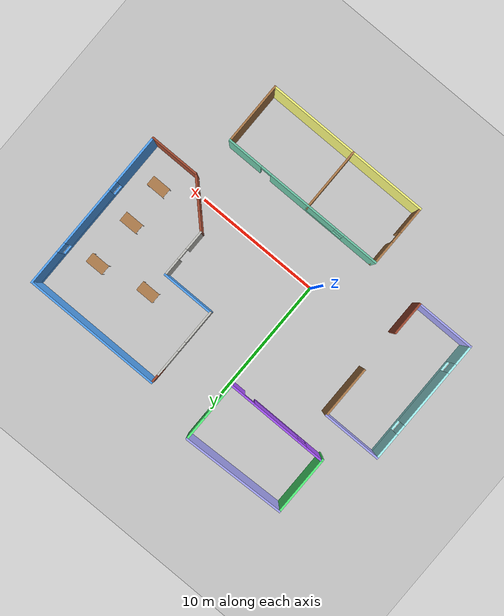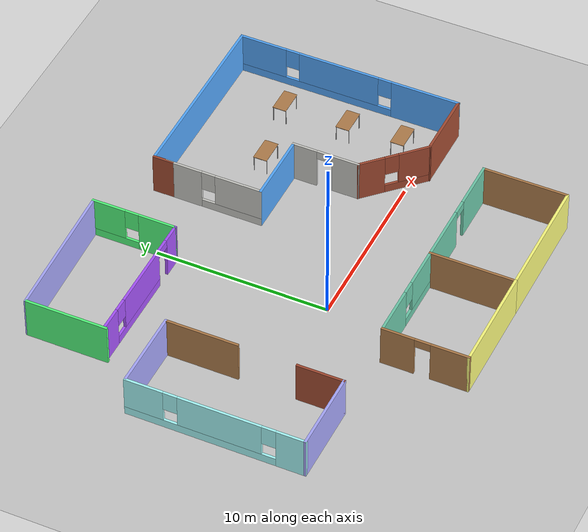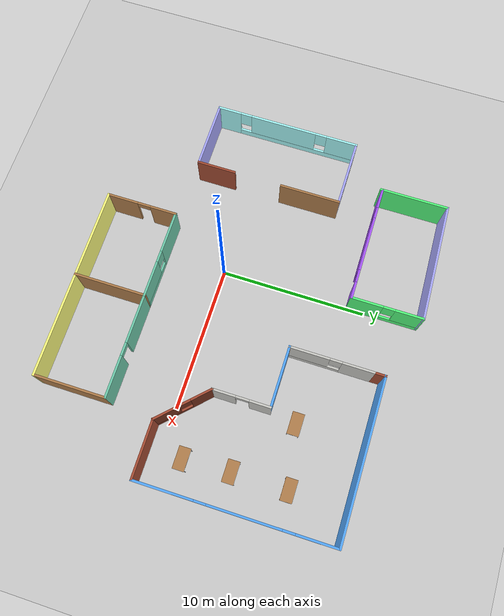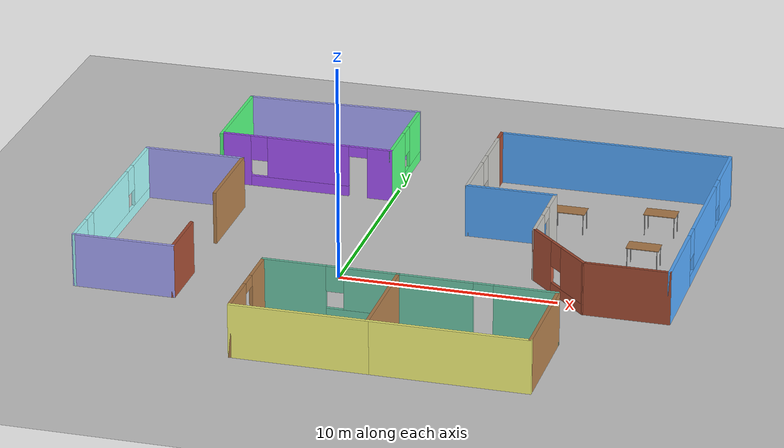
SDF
<sdf version="1.6">
 <world name="default">
  <model name="ground_plane">
   <static>1</static>
   <link name="link">
    <collision name="collision">
     <geometry><plane><normal>0 0 1</normal><size>100 100</size></plane></geometry>
     <surface>
      <contact><collide_bitmask>65535</collide_bitmask></contact>
      <friction><ode><mu>100</mu><mu2>50</mu2></ode></friction>
     </surface>
    </collision>
    <visual name="visual">
     <cast_shadows>0</cast_shadows>
     <geometry><plane><normal>0 0 1</normal><size>100 100</size></plane></geometry>
     <material>
      <script><uri>file://media/materials/scripts/gazebo.material</uri><name>Gazebo/Grey</name></script>
     </material>
    </visual>
   </link>
  </model>
  <model name="project_world">
   <pose>2.07578 2.357 0 0 -0 0</pose>
   <link name="Wall_1">
    <pose>-1.23578 -6.487 0 0 -0 0</pose>
    <visual name="Wall_1_Visual_0">
     <pose>-1.65552 0 1.25 0 -0 0</pose>
     <geometry><box><size>2.93896 0.15 2.5</size></box></geometry>
     <material>
      <script><uri>file://media/materials/scripts/gazebo.material</uri><name>Gazebo/Grey</name></script>
      <ambient>0.435294 0.796078 0.67451 1</ambient>
     </material>
     <meta><layer>0</layer></meta>
    </visual>
    <collision name="Wall_1_Collision_0">
     <geometry><box><size>2.93896 0.15 2.5</size></box></geometry>
     <pose>-1.65552 0 1.25 0 -0 0</pose>
    </collision>
    <visual name="Wall_1_Visual_1">
     <pose>1.46948 0 0.25 0 -0 0</pose>
     <geometry><box><size>3.31104 0.15 0.5</size></box></geometry>
     <material>
      <script><uri>file://media/materials/scripts/gazebo.material</uri><name>Gazebo/Grey</name></script>
      <ambient>0.435294 0.796078 0.67451 1</ambient>
     </material>
     <meta><layer>0</layer></meta>
    </visual>
    <collision name="Wall_1_Collision_1">
     <geometry><box><size>3.31104 0.15 0.5</size></box></geometry>
     <pose>1.46948 0 0.25 0 -0 0</pose>
    </collision>
    <visual name="Wall_1_Visual_2">
     <pose>1.86948 0 1.5 0 -0 0</pose>
     <geometry><box><size>2.51104 0.15 2</size></box></geometry>
     <material>
      <script><uri>file://media/materials/scripts/gazebo.material</uri><name>Gazebo/Grey</name></script>
      <ambient>0.435294 0.796078 0.67451 1</ambient>
     </material>
     <meta><layer>0</layer></meta>
    </visual>
    <collision name="Wall_1_Collision_2">
     <geometry><box><size>2.51104 0.15 2</size></box></geometry>
     <pose>1.86948 0 1.5 0 -0 0</pose>
    </collision>
    <visual name="Wall_1_Visual_3">
     <pose>0.213964 0 1.9 0 -0 0</pose>
     <geometry><box><size>0.8 0.15 1.2</size></box></geometry>
     <material>
      <script><uri>file://media/materials/scripts/gazebo.material</uri><name>Gazebo/Grey</name></script>
      <ambient>0.435294 0.796078 0.67451 1</ambient>
     </material>
     <meta><layer>0</layer></meta>
    </visual>
    <collision name="Wall_1_Collision_3">
     <geometry><box><size>0.8 0.15 1.2</size></box></geometry>
     <pose>0.213964 0 1.9 0 -0 0</pose>
    </collision>
   </link>
   <link name="Wall_11">
    <collision name="Wall_11_Collision">
     <geometry><box><size>2.75 0.15 2.5</size></box></geometry>
     <pose>0 0 1.25 0 -0 0</pose>
    </collision>
    <visual name="Wall_11_Visual">
     <pose>0 0 1.25 0 -0 0</pose>
     <geometry><box><size>2.75 0.15 2.5</size></box></geometry>
     <material>
      <script><uri>file://media/materials/scripts/gazebo.material</uri><name>Gazebo/Bricks</name></script>
      <ambient>1 1 1 1</ambient>
     </material>
     <meta><layer>0</layer></meta>
    </visual>
    <pose>-8.5094 -4.95184 0 0 -0 1.5708</pose>
   </link>
   <link name="Wall_13">
    <pose>-6.18981 6.48446 0 0 -0 0</pose>
    <visual name="Wall_13_Visual_0">
     <pose>-3.41981 0 1.25 0 -0 0</pose>
     <geometry><box><size>1.41037 0.15 2.5</size></box></geometry>
     <material>
      <script><uri>file://media/materials/scripts/gazebo.material</uri><name>Gazebo/Grey</name></script>
      <ambient>0.666667 0.333333 1 1</ambient>
     </material>
     <meta><layer>0</layer></meta>
    </visual>
    <collision name="Wall_13_Collision_0">
     <geometry><box><size>1.41037 0.15 2.5</size></box></geometry>
     <pose>-3.41981 0 1.25 0 -0 0</pose>
    </collision>
    <visual name="Wall_13_Visual_1">
     <pose>3.52234 0 1.25 0 -0 0</pose>
     <geometry><box><size>1.20531 0.15 2.5</size></box></geometry>
     <material>
      <script><uri>file://media/materials/scripts/gazebo.material</uri><name>Gazebo/Grey</name></script>
      <ambient>0.666667 0.333333 1 1</ambient>
     </material>
     <meta><layer>0</layer></meta>
    </visual>
    <collision name="Wall_13_Collision_1">
     <geometry><box><size>1.20531 0.15 2.5</size></box></geometry>
     <pose>3.52234 0 1.25 0 -0 0</pose>
    </collision>
    <visual name="Wall_13_Visual_2">
     <pose>-0.34747 0 0.25 0 -0 0</pose>
     <geometry><box><size>4.73431 0.15 0.5</size></box></geometry>
     <material>
      <script><uri>file://media/materials/scripts/gazebo.material</uri><name>Gazebo/Grey</name></script>
      <ambient>0.666667 0.333333 1 1</ambient>
     </material>
     <meta><layer>0</layer></meta>
    </visual>
    <collision name="Wall_13_Collision_2">
     <geometry><box><size>4.73431 0.15 0.5</size></box></geometry>
     <pose>-0.34747 0 0.25 0 -0 0</pose>
    </collision>
    <visual name="Wall_13_Visual_3">
     <pose>0.05253 0 1.5 0 -0 0</pose>
     <geometry><box><size>3.93431 0.15 2</size></box></geometry>
     <material>
      <script><uri>file://media/materials/scripts/gazebo.material</uri><name>Gazebo/Grey</name></script>
      <ambient>0.666667 0.333333 1 1</ambient>
     </material>
     <meta><layer>0</layer></meta>
    </visual>
    <collision name="Wall_13_Collision_3">
     <geometry><box><size>3.93431 0.15 2</size></box></geometry>
     <pose>0.05253 0 1.5 0 -0 0</pose>
    </collision>
    <visual name="Wall_13_Visual_4">
     <pose>-2.31463 0 1.9 0 -0 0</pose>
     <geometry><box><size>0.8 0.15 1.2</size></box></geometry>
     <material>
      <script><uri>file://media/materials/scripts/gazebo.material</uri><name>Gazebo/Grey</name></script>
      <ambient>0.666667 0.333333 1 1</ambient>
     </material>
     <meta><layer>0</layer></meta>
    </visual>
    <collision name="Wall_13_Collision_4">
     <geometry><box><size>0.8 0.15 1.2</size></box></geometry>
     <pose>-2.31463 0 1.9 0 -0 0</pose>
    </collision>
    <visual name="Wall_13_Visual_5">
     <pose>2.46969 0 2.25 0 -0 0</pose>
     <geometry><box><size>0.9 0.15 0.5</size></box></geometry>
     <material>
      <script><uri>file://media/materials/scripts/gazebo.material</uri><name>Gazebo/Grey</name></script>
      <ambient>0.666667 0.333333 1 1</ambient>
     </material>
     <meta><layer>0</layer></meta>
    </visual>
    <collision name="Wall_13_Collision_5">
     <geometry><box><size>0.9 0.15 0.5</size></box></geometry>
     <pose>2.46969 0 2.25 0 -0 0</pose>
    </collision>
   </link>
   <link name="Wall_14">
    <pose>-2.13981 8.90946 0 0 -0 1.5708</pose>
    <visual name="Wall_14_Visual_0">
     <pose>-1.38846 0 1.25 0 -0 0</pose>
     <geometry><box><size>2.22308 0.15 2.5</size></box></geometry>
     <material>
      <script><uri>file://media/materials/scripts/gazebo.material</uri><name>Gazebo/Grey</name></script>
      <ambient>0.333333 1 0.498039 1</ambient>
     </material>
     <meta><layer>0</layer></meta>
    </visual>
    <collision name="Wall_14_Collision_0">
     <geometry><box><size>2.22308 0.15 2.5</size></box></geometry>
     <pose>-1.38846 0 1.25 0 -0 0</pose>
    </collision>
    <visual name="Wall_14_Visual_1">
     <pose>1.11154 0 0.25 0 -0 0</pose>
     <geometry><box><size>2.77692 0.15 0.5</size></box></geometry>
     <material>
      <script><uri>file://media/materials/scripts/gazebo.material</uri><name>Gazebo/Grey</name></script>
      <ambient>0.333333 1 0.498039 1</ambient>
     </material>
     <meta><layer>0</layer></meta>
    </visual>
    <collision name="Wall_14_Collision_1">
     <geometry><box><size>2.77692 0.15 0.5</size></box></geometry>
     <pose>1.11154 0 0.25 0 -0 0</pose>
    </collision>
    <visual name="Wall_14_Visual_2">
     <pose>1.51154 0 1.5 0 -0 0</pose>
     <geometry><box><size>1.97692 0.15 2</size></box></geometry>
     <material>
      <script><uri>file://media/materials/scripts/gazebo.material</uri><name>Gazebo/Grey</name></script>
      <ambient>0.333333 1 0.498039 1</ambient>
     </material>
     <meta><layer>0</layer></meta>
    </visual>
    <collision name="Wall_14_Collision_2">
     <geometry><box><size>1.97692 0.15 2</size></box></geometry>
     <pose>1.51154 0 1.5 0 -0 0</pose>
    </collision>
    <visual name="Wall_14_Visual_3">
     <pose>0.123076 0 1.9 0 -0 0</pose>
     <geometry><box><size>0.8 0.15 1.2</size></box></geometry>
     <material>
      <script><uri>file://media/materials/scripts/gazebo.material</uri><name>Gazebo/Grey</name></script>
      <ambient>0.333333 1 0.498039 1</ambient>
     </material>
     <meta><layer>0</layer></meta>
    </visual>
    <collision name="Wall_14_Collision_3">
     <geometry><box><size>0.8 0.15 1.2</size></box></geometry>
     <pose>0.123076 0 1.9 0 -0 0</pose>
    </collision>
   </link>
   <link name="Wall_15">
    <collision name="Wall_15_Collision">
     <geometry><box><size>8.3252 0.15 2.5</size></box></geometry>
     <pose>0 0 1.25 0 -0 0</pose>
    </collision>
    <visual name="Wall_15_Visual">
     <pose>0 0 1.25 0 -0 0</pose>
     <geometry><box><size>8.3252 0.15 2.5</size></box></geometry>
     <material>
      <script><uri>file://media/materials/scripts/gazebo.material</uri><name>Gazebo/Grey</name></script>
      <ambient>0.666667 0.666667 1 1</ambient>
     </material>
     <meta><layer>0</layer></meta>
    </visual>
    <pose>-6.22499 11.1937 0 0 0 -3.10716</pose>
   </link>
   <link name="Wall_16">
    <collision name="Wall_16_Collision">
     <geometry><box><size>4.75 0.15 2.5</size></box></geometry>
     <pose>0 0 1.25 0 -0 0</pose>
    </collision>
    <visual name="Wall_16_Visual">
     <pose>0 0 1.25 0 -0 0</pose>
     <geometry><box><size>4.75 0.15 2.5</size></box></geometry>
     <material>
      <script><uri>file://media/materials/scripts/gazebo.material</uri><name>Gazebo/Grey</name></script>
      <ambient>0.333333 1 0.498039 1</ambient>
     </material>
     <meta><layer>0</layer></meta>
    </visual>
    <pose>-10.3102 8.68268 0 0 0 -1.5708</pose>
   </link>
   <link name="Wall_18">
    <pose>5.36422 -6.487 0 0 -0 0</pose>
    <visual name="Wall_18_Visual_0">
     <pose>-1.90549 0 1.25 0 -0 0</pose>
     <geometry><box><size>3.43901 0.15 2.5</size></box></geometry>
     <material>
      <script><uri>file://media/materials/scripts/gazebo.material</uri><name>Gazebo/Grey</name></script>
      <ambient>0.435294 0.796078 0.67451 1</ambient>
     </material>
     <meta><layer>0</layer></meta>
    </visual>
    <collision name="Wall_18_Collision_0">
     <geometry><box><size>3.43901 0.15 2.5</size></box></geometry>
     <pose>-1.90549 0 1.25 0 -0 0</pose>
    </collision>
    <visual name="Wall_18_Visual_1">
     <pose>2.16951 0 1.25 0 -0 0</pose>
     <geometry><box><size>2.91099 0.15 2.5</size></box></geometry>
     <material>
      <script><uri>file://media/materials/scripts/gazebo.material</uri><name>Gazebo/Grey</name></script>
      <ambient>0.435294 0.796078 0.67451 1</ambient>
     </material>
     <meta><layer>0</layer></meta>
    </visual>
    <collision name="Wall_18_Collision_1">
     <geometry><box><size>2.91099 0.15 2.5</size></box></geometry>
     <pose>2.16951 0 1.25 0 -0 0</pose>
    </collision>
    <visual name="Wall_18_Visual_2">
     <pose>0.264014 0 2.25 0 -0 0</pose>
     <geometry><box><size>0.9 0.15 0.5</size></box></geometry>
     <material>
      <script><uri>file://media/materials/scripts/gazebo.material</uri><name>Gazebo/Grey</name></script>
      <ambient>0.435294 0.796078 0.67451 1</ambient>
     </material>
     <meta><layer>0</layer></meta>
    </visual>
    <collision name="Wall_18_Collision_2">
     <geometry><box><size>0.9 0.15 0.5</size></box></geometry>
     <pose>0.264014 0 2.25 0 -0 0</pose>
    </collision>
   </link>
   <link name="Wall_19">
    <collision name="Wall_19_Collision">
     <geometry><box><size>5 0.15 2.5</size></box></geometry>
     <pose>0 0 1.25 0 -0 0</pose>
    </collision>
    <visual name="Wall_19_Visual">
     <pose>0 0 1.25 0 -0 0</pose>
     <geometry><box><size>5 0.15 2.5</size></box></geometry>
     <material>
      <script><uri>file://media/materials/scripts/gazebo.material</uri><name>Gazebo/Wood</name></script>
      <ambient>1 1 1 1</ambient>
     </material>
     <meta><layer>0</layer></meta>
    </visual>
    <pose>8.91422 -8.912 0 0 0 -1.5708</pose>
   </link>
   <link name="Wall_2">
    <collision name="Wall_2_Collision">
     <geometry><box><size>5 0.15 2.5</size></box></geometry>
     <pose>0 0 1.25 0 -0 0</pose>
    </collision>
    <visual name="Wall_2_Visual">
     <pose>0 0 1.25 0 -0 0</pose>
     <geometry><box><size>5 0.15 2.5</size></box></geometry>
     <material>
      <script><uri>file://media/materials/scripts/gazebo.material</uri><name>Gazebo/Wood</name></script>
      <ambient>1 1 1 1</ambient>
     </material>
     <meta><layer>0</layer></meta>
    </visual>
    <pose>1.81422 -8.912 0 0 0 -1.5708</pose>
   </link>
   <link name="Wall_20">
    <collision name="Wall_20_Collision">
     <geometry><box><size>7.25 0.15 2.5</size></box></geometry>
     <pose>0 0 1.25 0 -0 0</pose>
    </collision>
    <visual name="Wall_20_Visual">
     <pose>0 0 1.25 0 -0 0</pose>
     <geometry><box><size>7.25 0.15 2.5</size></box></geometry>
     <material>
      <script><uri>file://media/materials/scripts/gazebo.material</uri><name>Gazebo/Grey</name></script>
      <ambient>1 1 0.498039 1</ambient>
     </material>
     <meta><layer>0</layer></meta>
    </visual>
    <pose>5.36422 -11.337 0 0 -0 3.14159</pose>
   </link>
   <link name="Wall_22">
    <pose>2.26026 6.37326 0 0 0 -1.5708</pose>
    <visual name="Wall_22_Visual_0">
     <pose>-1.78632 0 1.25 0 -0 0</pose>
     <geometry><box><size>2.17736 0.15 2.5</size></box></geometry>
     <material>
      <script><uri>file://media/materials/scripts/gazebo.material</uri><name>Gazebo/CeilingTiled</name></script>
      <ambient>1 0.666667 1 1</ambient>
     </material>
     <meta><layer>0</layer></meta>
    </visual>
    <collision name="Wall_22_Collision_0">
     <geometry><box><size>2.17736 0.15 2.5</size></box></geometry>
     <pose>-1.78632 0 1.25 0 -0 0</pose>
    </collision>
    <visual name="Wall_22_Visual_1">
     <pose>1.08868 0 0.25 0 -0 0</pose>
     <geometry><box><size>3.57264 0.15 0.5</size></box></geometry>
     <material>
      <script><uri>file://media/materials/scripts/gazebo.material</uri><name>Gazebo/CeilingTiled</name></script>
      <ambient>1 0.666667 1 1</ambient>
     </material>
     <meta><layer>0</layer></meta>
    </visual>
    <collision name="Wall_22_Collision_1">
     <geometry><box><size>3.57264 0.15 0.5</size></box></geometry>
     <pose>1.08868 0 0.25 0 -0 0</pose>
    </collision>
    <visual name="Wall_22_Visual_2">
     <pose>1.48868 0 1.5 0 -0 0</pose>
     <geometry><box><size>2.77264 0.15 2</size></box></geometry>
     <material>
      <script><uri>file://media/materials/scripts/gazebo.material</uri><name>Gazebo/CeilingTiled</name></script>
      <ambient>1 0.666667 1 1</ambient>
     </material>
     <meta><layer>0</layer></meta>
    </visual>
    <collision name="Wall_22_Collision_2">
     <geometry><box><size>2.77264 0.15 2</size></box></geometry>
     <pose>1.48868 0 1.5 0 -0 0</pose>
    </collision>
    <visual name="Wall_22_Visual_3">
     <pose>-0.297644 0 1.9 0 -0 0</pose>
     <geometry><box><size>0.8 0.15 1.2</size></box></geometry>
     <material>
      <script><uri>file://media/materials/scripts/gazebo.material</uri><name>Gazebo/CeilingTiled</name></script>
      <ambient>1 0.666667 1 1</ambient>
     </material>
     <meta><layer>0</layer></meta>
    </visual>
    <collision name="Wall_22_Collision_3">
     <geometry><box><size>0.8 0.15 1.2</size></box></geometry>
     <pose>-0.297644 0 1.9 0 -0 0</pose>
    </collision>
   </link>
   <link name="Wall_23">
    <collision name="Wall_23_Collision">
     <geometry><box><size>4.25 0.15 2.5</size></box></geometry>
     <pose>0 0 1.25 0 -0 0</pose>
    </collision>
    <visual name="Wall_23_Visual">
     <pose>0 0 1.25 0 -0 0</pose>
     <geometry><box><size>4.25 0.15 2.5</size></box></geometry>
     <material>
      <script><uri>file://media/materials/scripts/gazebo.material</uri><name>Gazebo/Grey</name></script>
      <ambient>0.333333 0.666667 1 1</ambient>
     </material>
     <meta><layer>0</layer></meta>
    </visual>
    <pose>4.31026 3.57326 0 0 -0 0</pose>
   </link>
   <link name="Wall_24">
    <pose>6.36026 1.64826 0 0 0 -1.5708</pose>
    <visual name="Wall_24_Visual_0">
     <pose>-1.25855 0 1.25 0 -0 0</pose>
     <geometry><box><size>1.4829 0.15 2.5</size></box></geometry>
     <material>
      <script><uri>file://media/materials/scripts/gazebo.material</uri><name>Gazebo/CeilingTiled</name></script>
      <ambient>0.760784 0.662745 0.627451 1</ambient>
     </material>
     <meta><layer>0</layer></meta>
    </visual>
    <collision name="Wall_24_Collision_0">
     <geometry><box><size>1.4829 0.15 2.5</size></box></geometry>
     <pose>-1.25855 0 1.25 0 -0 0</pose>
    </collision>
    <visual name="Wall_24_Visual_1">
     <pose>1.19145 0 1.25 0 -0 0</pose>
     <geometry><box><size>1.6171 0.15 2.5</size></box></geometry>
     <material>
      <script><uri>file://media/materials/scripts/gazebo.material</uri><name>Gazebo/CeilingTiled</name></script>
      <ambient>0.760784 0.662745 0.627451 1</ambient>
     </material>
     <meta><layer>0</layer></meta>
    </visual>
    <collision name="Wall_24_Collision_1">
     <geometry><box><size>1.6171 0.15 2.5</size></box></geometry>
     <pose>1.19145 0 1.25 0 -0 0</pose>
    </collision>
    <visual name="Wall_24_Visual_2">
     <pose>-0.067102 0 2.25 0 -0 0</pose>
     <geometry><box><size>0.9 0.15 0.5</size></box></geometry>
     <material>
      <script><uri>file://media/materials/scripts/gazebo.material</uri><name>Gazebo/CeilingTiled</name></script>
      <ambient>0.760784 0.662745 0.627451 1</ambient>
     </material>
     <meta><layer>0</layer></meta>
    </visual>
    <collision name="Wall_24_Collision_2">
     <geometry><box><size>0.9 0.15 0.5</size></box></geometry>
     <pose>-0.067102 0 2.25 0 -0 0</pose>
    </collision>
   </link>
   <link name="Wall_25">
    <pose>7.80983 -1.72631 0 0 0 -0.785398</pose>
    <visual name="Wall_25_Visual_0">
     <pose>-1.33199 0 1.25 0 -0 0</pose>
     <geometry><box><size>1.58602 0.15 2.5</size></box></geometry>
     <material>
      <script><uri>file://media/materials/scripts/gazebo.material</uri><name>Gazebo/Bricks</name></script>
      <ambient>1 1 1 1</ambient>
     </material>
     <meta><layer>0</layer></meta>
    </visual>
    <collision name="Wall_25_Collision_0">
     <geometry><box><size>1.58602 0.15 2.5</size></box></geometry>
     <pose>-1.33199 0 1.25 0 -0 0</pose>
    </collision>
    <visual name="Wall_25_Visual_1">
     <pose>0.793009 0 0.25 0 -0 0</pose>
     <geometry><box><size>2.66398 0.15 0.5</size></box></geometry>
     <material>
      <script><uri>file://media/materials/scripts/gazebo.material</uri><name>Gazebo/Bricks</name></script>
      <ambient>1 1 1 1</ambient>
     </material>
     <meta><layer>0</layer></meta>
    </visual>
    <collision name="Wall_25_Collision_1">
     <geometry><box><size>2.66398 0.15 0.5</size></box></geometry>
     <pose>0.793009 0 0.25 0 -0 0</pose>
    </collision>
    <visual name="Wall_25_Visual_2">
     <pose>1.19301 0 1.5 0 -0 0</pose>
     <geometry><box><size>1.86398 0.15 2</size></box></geometry>
     <material>
      <script><uri>file://media/materials/scripts/gazebo.material</uri><name>Gazebo/Bricks</name></script>
      <ambient>1 1 1 1</ambient>
     </material>
     <meta><layer>0</layer></meta>
    </visual>
    <collision name="Wall_25_Collision_2">
     <geometry><box><size>1.86398 0.15 2</size></box></geometry>
     <pose>1.19301 0 1.5 0 -0 0</pose>
    </collision>
    <visual name="Wall_25_Visual_3">
     <pose>-0.138981 0 1.9 0 -0 0</pose>
     <geometry><box><size>0.8 0.15 1.2</size></box></geometry>
     <material>
      <script><uri>file://media/materials/scripts/gazebo.material</uri><name>Gazebo/Bricks</name></script>
      <ambient>1 1 1 1</ambient>
     </material>
     <meta><layer>0</layer></meta>
    </visual>
    <collision name="Wall_25_Collision_3">
     <geometry><box><size>0.8 0.15 1.2</size></box></geometry>
     <pose>-0.138981 0 1.9 0 -0 0</pose>
    </collision>
   </link>
   <link name="Wall_26">
    <collision name="Wall_26_Collision">
     <geometry><box><size>4 0.15 2.5</size></box></geometry>
     <pose>0 0 1.25 0 -0 0</pose>
    </collision>
    <visual name="Wall_26_Visual">
     <pose>0 0 1.25 0 -0 0</pose>
     <geometry><box><size>4 0.15 2.5</size></box></geometry>
     <material>
      <script><uri>file://media/materials/scripts/gazebo.material</uri><name>Gazebo/Bricks</name></script>
      <ambient>1 1 1 1</ambient>
     </material>
     <meta><layer>0</layer></meta>
    </visual>
    <pose>11.1844 -3.17588 0 0 -0 0</pose>
   </link>
   <link name="Wall_27">
    <pose>13.1094 3.37412 0 0 -0 1.5708</pose>
    <visual name="Wall_27_Visual_0">
     <pose>-4.60393 0 1.25 0 -0 0</pose>
     <geometry><box><size>4.04214 0.15 2.5</size></box></geometry>
     <material>
      <script><uri>file://media/materials/scripts/gazebo.material</uri><name>Gazebo/Grey</name></script>
      <ambient>0.333333 0.666667 1 1</ambient>
     </material>
     <meta><layer>0</layer></meta>
    </visual>
    <collision name="Wall_27_Collision_0">
     <geometry><box><size>4.04214 0.15 2.5</size></box></geometry>
     <pose>-4.60393 0 1.25 0 -0 0</pose>
    </collision>
    <visual name="Wall_27_Visual_1">
     <pose>2.02107 0 0.25 0 -0 0</pose>
     <geometry><box><size>9.20786 0.15 0.5</size></box></geometry>
     <material>
      <script><uri>file://media/materials/scripts/gazebo.material</uri><name>Gazebo/Grey</name></script>
      <ambient>0.333333 0.666667 1 1</ambient>
     </material>
     <meta><layer>0</layer></meta>
    </visual>
    <collision name="Wall_27_Collision_1">
     <geometry><box><size>9.20786 0.15 0.5</size></box></geometry>
     <pose>2.02107 0 0.25 0 -0 0</pose>
    </collision>
    <visual name="Wall_27_Visual_2">
     <pose>0.610161 0 1.5 0 -0 0</pose>
     <geometry><box><size>4.78604 0.15 2</size></box></geometry>
     <material>
      <script><uri>file://media/materials/scripts/gazebo.material</uri><name>Gazebo/Grey</name></script>
      <ambient>0.333333 0.666667 1 1</ambient>
     </material>
     <meta><layer>0</layer></meta>
    </visual>
    <collision name="Wall_27_Collision_2">
     <geometry><box><size>4.78604 0.15 2</size></box></geometry>
     <pose>0.610161 0 1.5 0 -0 0</pose>
    </collision>
    <visual name="Wall_27_Visual_3">
     <pose>5.21409 0 1.5 0 -0 0</pose>
     <geometry><box><size>2.82182 0.15 2</size></box></geometry>
     <material>
      <script><uri>file://media/materials/scripts/gazebo.material</uri><name>Gazebo/Grey</name></script>
      <ambient>0.333333 0.666667 1 1</ambient>
     </material>
     <meta><layer>0</layer></meta>
    </visual>
    <collision name="Wall_27_Collision_3">
     <geometry><box><size>2.82182 0.15 2</size></box></geometry>
     <pose>5.21409 0 1.5 0 -0 0</pose>
    </collision>
    <visual name="Wall_27_Visual_4">
     <pose>-2.18286 0 1.9 0 -0 0</pose>
     <geometry><box><size>0.8 0.15 1.2</size></box></geometry>
     <material>
      <script><uri>file://media/materials/scripts/gazebo.material</uri><name>Gazebo/Grey</name></script>
      <ambient>0.333333 0.666667 1 1</ambient>
     </material>
     <meta><layer>0</layer></meta>
    </visual>
    <collision name="Wall_27_Collision_4">
     <geometry><box><size>0.8 0.15 1.2</size></box></geometry>
     <pose>-2.18286 0 1.9 0 -0 0</pose>
    </collision>
    <visual name="Wall_27_Visual_5">
     <pose>3.40318 0 1.9 0 -0 0</pose>
     <geometry><box><size>0.8 0.15 1.2</size></box></geometry>
     <material>
      <script><uri>file://media/materials/scripts/gazebo.material</uri><name>Gazebo/Grey</name></script>
      <ambient>0.333333 0.666667 1 1</ambient>
     </material>
     <meta><layer>0</layer></meta>
    </visual>
    <collision name="Wall_27_Collision_5">
     <geometry><box><size>0.8 0.15 1.2</size></box></geometry>
     <pose>3.40318 0 1.9 0 -0 0</pose>
    </collision>
   </link>
   <link name="Wall_28">
    <collision name="Wall_28_Collision">
     <geometry><box><size>11 0.15 2.5</size></box></geometry>
     <pose>0 0 1.25 0 -0 0</pose>
    </collision>
    <visual name="Wall_28_Visual">
     <pose>0 0 1.25 0 -0 0</pose>
     <geometry><box><size>11 0.15 2.5</size></box></geometry>
     <material>
      <script><uri>file://media/materials/scripts/gazebo.material</uri><name>Gazebo/Grey</name></script>
      <ambient>0.333333 0.666667 1 1</ambient>
     </material>
     <meta><layer>0</layer></meta>
    </visual>
    <pose>7.6844 9.92412 0 0 -0 3.14159</pose>
   </link>
   <link name="Wall_29">
    <collision name="Wall_29_Collision">
     <geometry><box><size>1.25 0.15 2.5</size></box></geometry>
     <pose>0 0 1.25 0 -0 0</pose>
    </collision>
    <visual name="Wall_29_Visual">
     <pose>0 0 1.25 0 -0 0</pose>
     <geometry><box><size>1.25 0.15 2.5</size></box></geometry>
     <material>
      <script><uri>file://media/materials/scripts/gazebo.material</uri><name>Gazebo/Bricks</name></script>
      <ambient>1 1 1 1</ambient>
     </material>
     <meta><layer>0</layer></meta>
    </visual>
    <pose>2.2594 9.37412 0 0 0 -1.5708</pose>
   </link>
   <link name="Wall_3">
    <collision name="Wall_3_Collision">
     <geometry><box><size>6.25 0.15 2.5</size></box></geometry>
     <pose>0 0 1.25 0 -0 0</pose>
    </collision>
    <visual name="Wall_3_Visual">
     <pose>0 0 1.25 0 -0 0</pose>
     <geometry><box><size>6.25 0.15 2.5</size></box></geometry>
     <material>
      <script><uri>file://media/materials/scripts/gazebo.material</uri><name>Gazebo/Grey</name></script>
      <ambient>1 1 0.498039 1</ambient>
     </material>
     <meta><layer>0</layer></meta>
    </visual>
    <pose>-1.23578 -11.337 0 0 -0 3.14159</pose>
   </link>
   <link name="Wall_4">
    <pose>-4.28578 -8.912 0 0 -0 1.5708</pose>
    <visual name="Wall_4_Visual_0">
     <pose>-1.39761 0 1.25 0 -0 0</pose>
     <geometry><box><size>2.20478 0.15 2.5</size></box></geometry>
     <material>
      <script><uri>file://media/materials/scripts/gazebo.material</uri><name>Gazebo/Wood</name></script>
      <ambient>1 1 1 1</ambient>
     </material>
     <meta><layer>0</layer></meta>
    </visual>
    <collision name="Wall_4_Collision_0">
     <geometry><box><size>2.20478 0.15 2.5</size></box></geometry>
     <pose>-1.39761 0 1.25 0 -0 0</pose>
    </collision>
    <visual name="Wall_4_Visual_1">
     <pose>1.55239 0 1.25 0 -0 0</pose>
     <geometry><box><size>1.89522 0.15 2.5</size></box></geometry>
     <material>
      <script><uri>file://media/materials/scripts/gazebo.material</uri><name>Gazebo/Wood</name></script>
      <ambient>1 1 1 1</ambient>
     </material>
     <meta><layer>0</layer></meta>
    </visual>
    <collision name="Wall_4_Collision_1">
     <geometry><box><size>1.89522 0.15 2.5</size></box></geometry>
     <pose>1.55239 0 1.25 0 -0 0</pose>
    </collision>
    <visual name="Wall_4_Visual_2">
     <pose>0.154783 0 2.25 0 -0 0</pose>
     <geometry><box><size>0.9 0.15 0.5</size></box></geometry>
     <material>
      <script><uri>file://media/materials/scripts/gazebo.material</uri><name>Gazebo/Wood</name></script>
      <ambient>1 1 1 1</ambient>
     </material>
     <meta><layer>0</layer></meta>
    </visual>
    <collision name="Wall_4_Collision_2">
     <geometry><box><size>0.9 0.15 0.5</size></box></geometry>
     <pose>0.154783 0 2.25 0 -0 0</pose>
    </collision>
   </link>
   <link name="Wall_6">
    <collision name="Wall_6_Collision">
     <geometry><box><size>4.75 0.15 2.5</size></box></geometry>
     <pose>0 0 1.25 0 -0 0</pose>
    </collision>
    <visual name="Wall_6_Visual">
     <pose>0 0 1.25 0 -0 0</pose>
     <geometry><box><size>4.75 0.15 2.5</size></box></geometry>
     <material>
      <script><uri>file://media/materials/scripts/gazebo.material</uri><name>Gazebo/Grey</name></script>
      <ambient>0.666667 0.666667 1 1</ambient>
     </material>
     <meta><layer>0</layer></meta>
    </visual>
    <pose>-10.8094 -6.25184 0 0 -0 3.14159</pose>
   </link>
   <link name="Wall_7">
    <pose>-13.1094 -1.20184 0 0 -0 1.5708</pose>
    <visual name="Wall_7_Visual_0">
     <pose>-4.27917 0 1.25 0 -0 0</pose>
     <geometry><box><size>1.69166 0.15 2.5</size></box></geometry>
     <material>
      <script><uri>file://media/materials/scripts/gazebo.material</uri><name>Gazebo/Grey</name></script>
      <ambient>0.666667 1 1 1</ambient>
     </material>
     <meta><layer>0</layer></meta>
    </visual>
    <collision name="Wall_7_Collision_0">
     <geometry><box><size>1.69166 0.15 2.5</size></box></geometry>
     <pose>-4.27917 0 1.25 0 -0 0</pose>
    </collision>
    <visual name="Wall_7_Visual_1">
     <pose>0.84583 0 0.25 0 -0 0</pose>
     <geometry><box><size>8.55834 0.15 0.5</size></box></geometry>
     <material>
      <script><uri>file://media/materials/scripts/gazebo.material</uri><name>Gazebo/Grey</name></script>
      <ambient>0.666667 1 1 1</ambient>
     </material>
     <meta><layer>0</layer></meta>
    </visual>
    <collision name="Wall_7_Collision_1">
     <geometry><box><size>8.55834 0.15 0.5</size></box></geometry>
     <pose>0.84583 0 0.25 0 -0 0</pose>
    </collision>
    <visual name="Wall_7_Visual_2">
     <pose>-0.266919 0 1.5 0 -0 0</pose>
     <geometry><box><size>4.73284 0.15 2</size></box></geometry>
     <material>
      <script><uri>file://media/materials/scripts/gazebo.material</uri><name>Gazebo/Grey</name></script>
      <ambient>0.666667 1 1 1</ambient>
     </material>
     <meta><layer>0</layer></meta>
    </visual>
    <collision name="Wall_7_Collision_2">
     <geometry><box><size>4.73284 0.15 2</size></box></geometry>
     <pose>-0.266919 0 1.5 0 -0 0</pose>
    </collision>
    <visual name="Wall_7_Visual_3">
     <pose>4.01225 0 1.5 0 -0 0</pose>
     <geometry><box><size>2.2255 0.15 2</size></box></geometry>
     <material>
      <script><uri>file://media/materials/scripts/gazebo.material</uri><name>Gazebo/Grey</name></script>
      <ambient>0.666667 1 1 1</ambient>
     </material>
     <meta><layer>0</layer></meta>
    </visual>
    <collision name="Wall_7_Collision_3">
     <geometry><box><size>2.2255 0.15 2</size></box></geometry>
     <pose>4.01225 0 1.5 0 -0 0</pose>
    </collision>
    <visual name="Wall_7_Visual_4">
     <pose>-3.03334 0 1.9 0 -0 0</pose>
     <geometry><box><size>0.8 0.15 1.2</size></box></geometry>
     <material>
      <script><uri>file://media/materials/scripts/gazebo.material</uri><name>Gazebo/Grey</name></script>
      <ambient>0.666667 1 1 1</ambient>
     </material>
     <meta><layer>0</layer></meta>
    </visual>
    <collision name="Wall_7_Collision_4">
     <geometry><box><size>0.8 0.15 1.2</size></box></geometry>
     <pose>-3.03334 0 1.9 0 -0 0</pose>
    </collision>
    <visual name="Wall_7_Visual_5">
     <pose>2.4995 0 1.9 0 -0 0</pose>
     <geometry><box><size>0.8 0.15 1.2</size></box></geometry>
     <material>
      <script><uri>file://media/materials/scripts/gazebo.material</uri><name>Gazebo/Grey</name></script>
      <ambient>0.666667 1 1 1</ambient>
     </material>
     <meta><layer>0</layer></meta>
    </visual>
    <collision name="Wall_7_Collision_5">
     <geometry><box><size>0.8 0.15 1.2</size></box></geometry>
     <pose>2.4995 0 1.9 0 -0 0</pose>
    </collision>
   </link>
   <link name="Wall_8">
    <collision name="Wall_8_Collision">
     <geometry><box><size>4.75 0.15 2.5</size></box></geometry>
     <pose>0 0 1.25 0 -0 0</pose>
    </collision>
    <visual name="Wall_8_Visual">
     <pose>0 0 1.25 0 -0 0</pose>
     <geometry><box><size>4.75 0.15 2.5</size></box></geometry>
     <material>
      <script><uri>file://media/materials/scripts/gazebo.material</uri><name>Gazebo/Grey</name></script>
      <ambient>0.666667 0.666667 1 1</ambient>
     </material>
     <meta><layer>0</layer></meta>
    </visual>
    <pose>-10.8094 3.84816 0 0 -0 0</pose>
   </link>
   <link name="Wall_9">
    <collision name="Wall_9_Collision">
     <geometry><box><size>4.25 0.15 2.5</size></box></geometry>
     <pose>0 0 1.25 0 -0 0</pose>
    </collision>
    <visual name="Wall_9_Visual">
     <pose>0 0 1.25 0 -0 0</pose>
     <geometry><box><size>4.25 0.15 2.5</size></box></geometry>
     <material>
      <script><uri>file://media/materials/scripts/gazebo.material</uri><name>Gazebo/Wood</name></script>
      <ambient>1 1 1 1</ambient>
     </material>
     <meta><layer>0</layer></meta>
    </visual>
    <pose>-8.5094 1.79816 0 0 0 -1.5708</pose>
   </link>
   <static>1</static>
  </model>
  <model name="table">
   <static>1</static>
   <link name="link">
    <collision name="surface">
     <pose>0 0 1 0 -0 0</pose>
     <geometry><box><size>1.5 0.8 0.03</size></box></geometry>
     <surface><friction><ode><mu>0.6</mu><mu2>0.6</mu2></ode></friction></surface>
    </collision>
    <visual name="visual1">
     <pose>0 0 1 0 -0 0</pose>
     <geometry><box><size>1.5 0.8 0.03</size></box></geometry>
     <material>
      <script><uri>file://media/materials/scripts/gazebo.material</uri><name>Gazebo/Wood</name></script>
     </material>
    </visual>
    <collision name="front_left_leg">
     <pose>0.68 0.38 0.5 0 -0 0</pose>
     <geometry><cylinder><radius>0.02</radius><length>1</length></cylinder></geometry>
    </collision>
    <visual name="front_left_leg">
     <pose>0.68 0.38 0.5 0 -0 0</pose>
     <geometry><cylinder><radius>0.02</radius><length>1</length></cylinder></geometry>
     <material>
      <script><uri>file://media/materials/scripts/gazebo.material</uri><name>Gazebo/Grey</name></script>
     </material>
    </visual>
    <collision name="front_right_leg">
     <pose>0.68 -0.38 0.5 0 -0 0</pose>
     <geometry><cylinder><radius>0.02</radius><length>1</length></cylinder></geometry>
    </collision>
    <visual name="front_right_leg">
     <pose>0.68 -0.38 0.5 0 -0 0</pose>
     <geometry><cylinder><radius>0.02</radius><length>1</length></cylinder></geometry>
     <material>
      <script><uri>file://media/materials/scripts/gazebo.material</uri><name>Gazebo/Grey</name></script>
     </material>
    </visual>
    <collision name="back_right_leg">
     <pose>-0.68 -0.38 0.5 0 -0 0</pose>
     <geometry><cylinder><radius>0.02</radius><length>1</length></cylinder></geometry>
    </collision>
    <visual name="back_right_leg">
     <pose>-0.68 -0.38 0.5 0 -0 0</pose>
     <geometry><cylinder><radius>0.02</radius><length>1</length></cylinder></geometry>
     <material>
      <script><uri>file://media/materials/scripts/gazebo.material</uri><name>Gazebo/Grey</name></script>
     </material>
    </visual>
    <collision name="back_left_leg">
     <pose>-0.68 0.38 0.5 0 -0 0</pose>
     <geometry><cylinder><radius>0.02</radius><length>1</length></cylinder></geometry>
    </collision>
    <visual name="back_left_leg">
     <pose>-0.68 0.38 0.5 0 -0 0</pose>
     <geometry><cylinder><radius>0.02</radius><length>1</length></cylinder></geometry>
     <material>
      <script><uri>file://media/materials/scripts/gazebo.material</uri><name>Gazebo/Grey</name></script>
     </material>
    </visual>
   </link>
   <pose>12.8261 4.71149 0 0 -0 0</pose>
  </model>
  <model name="table_1">
   <static>1</static>
   <link name="link">
    <collision name="surface">
     <pose>0 0 1 0 -0 0</pose>
     <geometry><box><size>1.5 0.8 0.03</size></box></geometry>
     <surface><friction><ode><mu>0.6</mu><mu2>0.6</mu2></ode></friction></surface>
    </collision>
    <visual name="visual1">
     <pose>0 0 1 0 -0 0</pose>
     <geometry><box><size>1.5 0.8 0.03</size></box></geometry>
     <material>
      <script><uri>file://media/materials/scripts/gazebo.material</uri><name>Gazebo/Wood</name></script>
     </material>
    </visual>
    <collision name="front_left_leg">
     <pose>0.68 0.38 0.5 0 -0 0</pose>
     <geometry><cylinder><radius>0.02</radius><length>1</length></cylinder></geometry>
    </collision>
    <visual name="front_left_leg">
     <pose>0.68 0.38 0.5 0 -0 0</pose>
     <geometry><cylinder><radius>0.02</radius><length>1</length></cylinder></geometry>
     <material>
      <script><uri>file://media/materials/scripts/gazebo.material</uri><name>Gazebo/Grey</name></script>
     </material>
    </visual>
    <collision name="front_right_leg">
     <pose>0.68 -0.38 0.5 0 -0 0</pose>
     <geometry><cylinder><radius>0.02</radius><length>1</length></cylinder></geometry>
    </collision>
    <visual name="front_right_leg">
     <pose>0.68 -0.38 0.5 0 -0 0</pose>
     <geometry><cylinder><radius>0.02</radius><length>1</length></cylinder></geometry>
     <material>
      <script><uri>file://media/materials/scripts/gazebo.material</uri><name>Gazebo/Grey</name></script>
     </material>
    </visual>
    <collision name="back_right_leg">
     <pose>-0.68 -0.38 0.5 0 -0 0</pose>
     <geometry><cylinder><radius>0.02</radius><length>1</length></cylinder></geometry>
    </collision>
    <visual name="back_right_leg">
     <pose>-0.68 -0.38 0.5 0 -0 0</pose>
     <geometry><cylinder><radius>0.02</radius><length>1</length></cylinder></geometry>
     <material>
      <script><uri>file://media/materials/scripts/gazebo.material</uri><name>Gazebo/Grey</name></script>
     </material>
    </visual>
    <collision name="back_left_leg">
     <pose>-0.68 0.38 0.5 0 -0 0</pose>
     <geometry><cylinder><radius>0.02</radius><length>1</length></cylinder></geometry>
    </collision>
    <visual name="back_left_leg">
     <pose>-0.68 0.38 0.5 0 -0 0</pose>
     <geometry><cylinder><radius>0.02</radius><length>1</length></cylinder></geometry>
     <material>
      <script><uri>file://media/materials/scripts/gazebo.material</uri><name>Gazebo/Grey</name></script>
     </material>
    </visual>
   </link>
   <pose>12.9896 1.50462 0 0 -0 0</pose>
  </model>
  <model name="table_2">
   <static>1</static>
   <link name="link">
    <collision name="surface">
     <pose>0 0 1 0 -0 0</pose>
     <geometry><box><size>1.5 0.8 0.03</size></box></geometry>
     <surface><friction><ode><mu>0.6</mu><mu2>0.6</mu2></ode></friction></surface>
    </collision>
    <visual name="visual1">
     <pose>0 0 1 0 -0 0</pose>
     <geometry><box><size>1.5 0.8 0.03</size></box></geometry>
     <material>
      <script><uri>file://media/materials/scripts/gazebo.material</uri><name>Gazebo/Wood</name></script>
     </material>
    </visual>
    <collision name="front_left_leg">
     <pose>0.68 0.38 0.5 0 -0 0</pose>
     <geometry><cylinder><radius>0.02</radius><length>1</length></cylinder></geometry>
    </collision>
    <visual name="front_left_leg">
     <pose>0.68 0.38 0.5 0 -0 0</pose>
     <geometry><cylinder><radius>0.02</radius><length>1</length></cylinder></geometry>
     <material>
      <script><uri>file://media/materials/scripts/gazebo.material</uri><name>Gazebo/Grey</name></script>
     </material>
    </visual>
    <collision name="front_right_leg">
     <pose>0.68 -0.38 0.5 0 -0 0</pose>
     <geometry><cylinder><radius>0.02</radius><length>1</length></cylinder></geometry>
    </collision>
    <visual name="front_right_leg">
     <pose>0.68 -0.38 0.5 0 -0 0</pose>
     <geometry><cylinder><radius>0.02</radius><length>1</length></cylinder></geometry>
     <material>
      <script><uri>file://media/materials/scripts/gazebo.material</uri><name>Gazebo/Grey</name></script>
     </material>
    </visual>
    <collision name="back_right_leg">
     <pose>-0.68 -0.38 0.5 0 -0 0</pose>
     <geometry><cylinder><radius>0.02</radius><length>1</length></cylinder></geometry>
    </collision>
    <visual name="back_right_leg">
     <pose>-0.68 -0.38 0.5 0 -0 0</pose>
     <geometry><cylinder><radius>0.02</radius><length>1</length></cylinder></geometry>
     <material>
      <script><uri>file://media/materials/scripts/gazebo.material</uri><name>Gazebo/Grey</name></script>
     </material>
    </visual>
    <collision name="back_left_leg">
     <pose>-0.68 0.38 0.5 0 -0 0</pose>
     <geometry><cylinder><radius>0.02</radius><length>1</length></cylinder></geometry>
    </collision>
    <visual name="back_left_leg">
     <pose>-0.68 0.38 0.5 0 -0 0</pose>
     <geometry><cylinder><radius>0.02</radius><length>1</length></cylinder></geometry>
     <material>
      <script><uri>file://media/materials/scripts/gazebo.material</uri><name>Gazebo/Grey</name></script>
     </material>
    </visual>
   </link>
   <pose>12.7915 8.50568 0 0 -0 0</pose>
  </model>
  <model name="table_3">
   <static>1</static>
   <link name="link">
    <collision name="surface">
     <pose>0 0 1 0 -0 0</pose>
     <geometry><box><size>1.5 0.8 0.03</size></box></geometry>
     <surface><friction><ode><mu>0.6</mu><mu2>0.6</mu2></ode></friction></surface>
    </collision>
    <visual name="visual1">
     <pose>0 0 1 0 -0 0</pose>
     <geometry><box><size>1.5 0.8 0.03</size></box></geometry>
     <material>
      <script><uri>file://media/materials/scripts/gazebo.material</uri><name>Gazebo/Wood</name></script>
     </material>
    </visual>
    <collision name="front_left_leg">
     <pose>0.68 0.38 0.5 0 -0 0</pose>
     <geometry><cylinder><radius>0.02</radius><length>1</length></cylinder></geometry>
    </collision>
    <visual name="front_left_leg">
     <pose>0.68 0.38 0.5 0 -0 0</pose>
     <geometry><cylinder><radius>0.02</radius><length>1</length></cylinder></geometry>
     <material>
      <script><uri>file://media/materials/scripts/gazebo.material</uri><name>Gazebo/Grey</name></script>
     </material>
    </visual>
    <collision name="front_right_leg">
     <pose>0.68 -0.38 0.5 0 -0 0</pose>
     <geometry><cylinder><radius>0.02</radius><length>1</length></cylinder></geometry>
    </collision>
    <visual name="front_right_leg">
     <pose>0.68 -0.38 0.5 0 -0 0</pose>
     <geometry><cylinder><radius>0.02</radius><length>1</length></cylinder></geometry>
     <material>
      <script><uri>file://media/materials/scripts/gazebo.material</uri><name>Gazebo/Grey</name></script>
     </material>
    </visual>
    <collision name="back_right_leg">
     <pose>-0.68 -0.38 0.5 0 -0 0</pose>
     <geometry><cylinder><radius>0.02</radius><length>1</length></cylinder></geometry>
    </collision>
    <visual name="back_right_leg">
     <pose>-0.68 -0.38 0.5 0 -0 0</pose>
     <geometry><cylinder><radius>0.02</radius><length>1</length></cylinder></geometry>
     <material>
      <script><uri>file://media/materials/scripts/gazebo.material</uri><name>Gazebo/Grey</name></script>
     </material>
    </visual>
    <collision name="back_left_leg">
     <pose>-0.68 0.38 0.5 0 -0 0</pose>
     <geometry><cylinder><radius>0.02</radius><length>1</length></cylinder></geometry>
    </collision>
    <visual name="back_left_leg">
     <pose>-0.68 0.38 0.5 0 -0 0</pose>
     <geometry><cylinder><radius>0.02</radius><length>1</length></cylinder></geometry>
     <material>
      <script><uri>file://media/materials/scripts/gazebo.material</uri><name>Gazebo/Grey</name></script>
     </material>
    </visual>
   </link>
   <pose>8.72996 7.74049 0 0 -0 0</pose>
  </model>
 </world>
</sdf>
